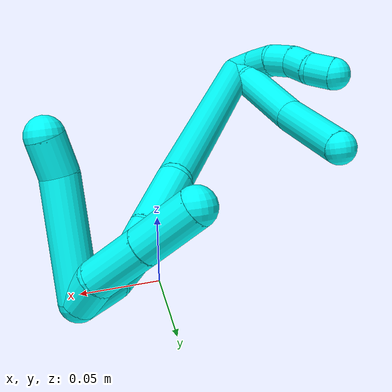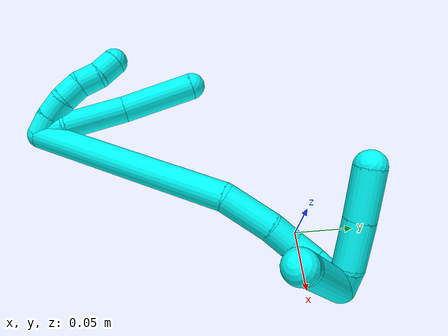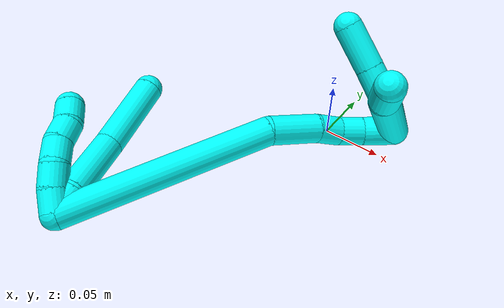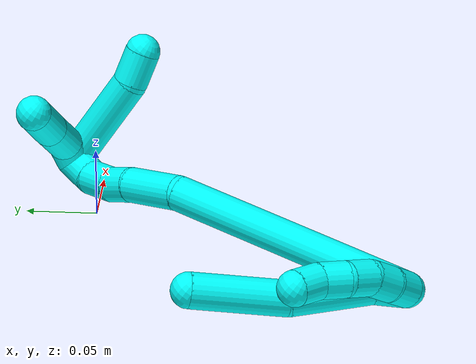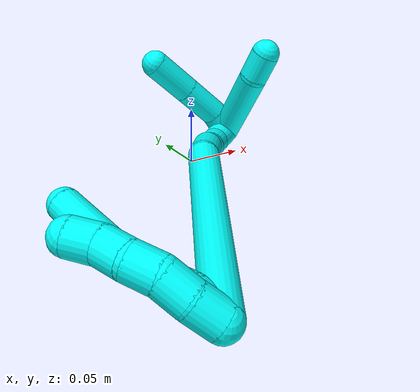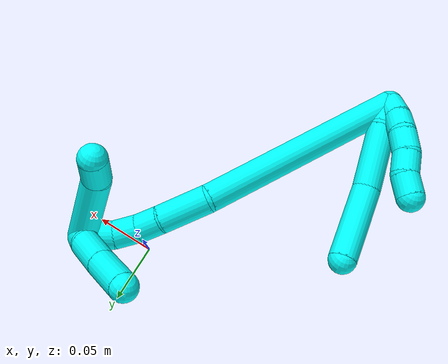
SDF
<sdf version="1.7">
 <world name="default">
  <model name="photoneo_s_sensor">
   <static>1</static>
   <pose>0 0 2 1.57079 1.57079 3.14159</pose>
   <link name="link">
    <inertial><mass>0.1</mass></inertial>
    <sensor name="sensor" type="depth">
     <update_rate>30</update_rate>
     <camera>
      <horizontal_fov>1.22</horizontal_fov>
      <image><width>1920</width><height>1200</height><format>B8G8R8</format></image>
      <clip><near>0.1</near><far>4</far></clip>
      <depth_camera><output>points</output></depth_camera>
     </camera>
     <plugin name="camera_plugin" filename="libgazebo_ros_depth_camera.so">
      <baseline>0.2</baseline>
      <alwaysOn>1</alwaysOn>
      <updateRate>0.0</updateRate>
      <cameraName>camera_ir</cameraName>
      <imageTopicName>/camera/color/image_raw</imageTopicName>
      <cameraInfoTopicName>/camera/color/camera_info</cameraInfoTopicName>
      <depthImageTopicName>/camera/depth/image_raw</depthImageTopicName>
      <depthImageCameraInfoTopicName>/camera/depth/camera_info</depthImageCameraInfoTopicName>
      <pointCloudTopicName>/camera/depth/points</pointCloudTopicName>
      <frameName>fr_optical</frameName>
      <pointCloudCutoff>0.1</pointCloudCutoff>
      <pointCloudCutoffMax>2.0</pointCloudCutoffMax>
      <distortionK1>0</distortionK1>
      <distortionK2>0</distortionK2>
      <distortionK3>0</distortionK3>
      <distortionT1>0</distortionT1>
      <distortionT2>0</distortionT2>
      <CxPrime>0</CxPrime>
      <Cx>0</Cx>
      <Cy>0</Cy>
      <focalLength>0</focalLength>
      <hackBaseline>0</hackBaseline>
     </plugin>
    </sensor>
   </link>
  </model>
  <model name="bin">
   <static>1</static>
   <link name="bottom">
    <collision name="collision-bottom">
     <pose>0 0 -0.01 0 -0 0</pose>
     <geometry><box><size>0.8 0.6 0.02</size></box></geometry>
     <surface>
      <friction><ode><mu>100</mu><mu2>100</mu2></ode></friction>
      <contact><collide_bitmask>65535</collide_bitmask></contact>
     </surface>
    </collision>
   </link>
   <link name="west_wall">
    <collision name="collision-west_wall">
     <pose>-0.41 0 0.1 0 -0 0</pose>
     <geometry><box><size>0.02 0.6 0.2</size></box></geometry>
     <surface>
      <friction><ode><mu>100</mu><mu2>100</mu2></ode></friction>
      <contact><collide_bitmask>65535</collide_bitmask></contact>
     </surface>
    </collision>
   </link>
   <link name="east_wall">
    <collision name="collision-east_wall">
     <pose>0.41 0 0.1 0 -0 0</pose>
     <geometry><box><size>0.02 0.6 0.2</size></box></geometry>
     <surface>
      <friction><ode><mu>100</mu><mu2>100</mu2></ode></friction>
      <contact><collide_bitmask>65535</collide_bitmask></contact>
     </surface>
    </collision>
   </link>
   <link name="south_wall">
    <collision name="collision-south_wall">
     <pose>0 -0.31 0.1 0 -0 0</pose>
     <geometry><box><size>0.8 0.02 0.2</size></box></geometry>
     <surface>
      <friction><ode><mu>100</mu><mu2>100</mu2></ode></friction>
      <contact><collide_bitmask>65535</collide_bitmask></contact>
     </surface>
    </collision>
   </link>
   <link name="north_wall">
    <collision name="collision-north_wall">
     <pose>0 0.31 0.1 0 -0 0</pose>
     <geometry><box><size>0.8 0.02 0.2</size></box></geometry>
     <surface>
      <friction><ode><mu>100</mu><mu2>100</mu2></ode></friction>
      <contact><collide_bitmask>65535</collide_bitmask></contact>
     </surface>
    </collision>
   </link>
  </model>
  <model name="3">
   <static>0</static>
   <link name="3">
    <collision name="collision-cylinder-e_1_2_8">
     <pose>0.004669 0.009964 -0.004305 -1.97862 0.40623 -0.607293</pose>
     <geometry><cylinder><radius>0.0125</radius><length>0.023632</length></cylinder></geometry>
     <surface>
      <friction><ode><mu>1.16</mu><mu2>1.16</mu2><slip1>0</slip1><slip2>0</slip2></ode></friction>
      <contact><ode><kp>1e+06</kp><kd>1</kd><max_vel>0</max_vel><min_depth>0.001</min_depth></ode></contact>
     </surface>
    </collision>
    <visual name="visual-cylinder-e_1_2_8">
     <pose>0.004669 0.009964 -0.004305 -1.97862 0.40623 -0.607293</pose>
     <geometry><cylinder><radius>0.0125</radius><length>0.023632</length></cylinder></geometry>
     <material><ambient>0.003922 1 0.996078 1</ambient></material>
    </visual>
    <collision name="collision-cylinder-e_2_8_9">
     <pose>0.016513 0.043103 -0.024693 -2.17748 0.249075 -0.469681</pose>
     <geometry><cylinder><radius>0.0125</radius><length>0.058214</length></cylinder></geometry>
     <surface>
      <friction><ode><mu>1.16</mu><mu2>1.16</mu2><slip1>0</slip1><slip2>0</slip2></ode></friction>
      <contact><ode><kp>1e+06</kp><kd>1</kd><max_vel>0</max_vel><min_depth>0.001</min_depth></ode></contact>
     </surface>
    </collision>
    <visual name="visual-cylinder-e_2_8_9">
     <pose>0.016513 0.043103 -0.024693 -2.17748 0.249075 -0.469681</pose>
     <geometry><cylinder><radius>0.0125</radius><length>0.058214</length></cylinder></geometry>
     <material><ambient>0.003922 1 0.996078 1</ambient></material>
    </visual>
    <collision name="collision-cylinder-e_3_9_6">
     <pose>0.036977 0.0948 -0.053859 -2.00088 0.400592 -0.613025</pose>
     <geometry><cylinder><radius>0.0125</radius><length>0.068154</length></cylinder></geometry>
     <surface>
      <friction><ode><mu>1.16</mu><mu2>1.16</mu2><slip1>0</slip1><slip2>0</slip2></ode></friction>
      <contact><ode><kp>1e+06</kp><kd>1</kd><max_vel>0</max_vel><min_depth>0.001</min_depth></ode></contact>
     </surface>
    </collision>
    <visual name="visual-cylinder-e_3_9_6">
     <pose>0.036977 0.0948 -0.053859 -2.00088 0.400592 -0.613025</pose>
     <geometry><cylinder><radius>0.0125</radius><length>0.068154</length></cylinder></geometry>
     <material><ambient>0.003922 1 0.996078 1</ambient></material>
    </visual>
    <collision name="collision-cylinder-e_1_2_10">
     <pose>-0.000339 0.009846 0.001714 -1.39845 -0.033866 0.028481</pose>
     <geometry><cylinder><radius>0.0125</radius><length>0.02</length></cylinder></geometry>
     <surface>
      <friction><ode><mu>1.16</mu><mu2>1.16</mu2><slip1>0</slip1><slip2>0</slip2></ode></friction>
      <contact><ode><kp>1e+06</kp><kd>1</kd><max_vel>0</max_vel><min_depth>0.001</min_depth></ode></contact>
     </surface>
    </collision>
    <visual name="visual-cylinder-e_1_2_10">
     <pose>-0.000339 0.009846 0.001714 -1.39845 -0.033866 0.028481</pose>
     <geometry><cylinder><radius>0.0125</radius><length>0.02</length></cylinder></geometry>
     <material><ambient>0.003922 1 0.996078 1</ambient></material>
    </visual>
    <collision name="collision-cylinder-e_2_10_11">
     <pose>0.000454 0.029599 0.004184 -1.49466 0.11339 -0.105085</pose>
     <geometry><cylinder><radius>0.0125</radius><length>0.02</length></cylinder></geometry>
     <surface>
      <friction><ode><mu>1.16</mu><mu2>1.16</mu2><slip1>0</slip1><slip2>0</slip2></ode></friction>
      <contact><ode><kp>1e+06</kp><kd>1</kd><max_vel>0</max_vel><min_depth>0.001</min_depth></ode></contact>
     </surface>
    </collision>
    <visual name="visual-cylinder-e_2_10_11">
     <pose>0.000454 0.029599 0.004184 -1.49466 0.11339 -0.105085</pose>
     <geometry><cylinder><radius>0.0125</radius><length>0.02</length></cylinder></geometry>
     <material><ambient>0.003922 1 0.996078 1</ambient></material>
    </visual>
    <collision name="collision-cylinder-e_3_11_12">
     <pose>0.001607 0.049305 0.002943 -1.77178 0.002145 -0.002626</pose>
     <geometry><cylinder><radius>0.0125</radius><length>0.02</length></cylinder></geometry>
     <surface>
      <friction><ode><mu>1.16</mu><mu2>1.16</mu2><slip1>0</slip1><slip2>0</slip2></ode></friction>
      <contact><ode><kp>1e+06</kp><kd>1</kd><max_vel>0</max_vel><min_depth>0.001</min_depth></ode></contact>
     </surface>
    </collision>
    <visual name="visual-cylinder-e_3_11_12">
     <pose>0.001607 0.049305 0.002943 -1.77178 0.002145 -0.002626</pose>
     <geometry><cylinder><radius>0.0125</radius><length>0.02</length></cylinder></geometry>
     <material><ambient>0.003922 1 0.996078 1</ambient></material>
    </visual>
    <collision name="collision-cylinder-e_4_12_13">
     <pose>0.003555 0.068083 -0.00301 -1.98585 0.193887 -0.296065</pose>
     <geometry><cylinder><radius>0.0125</radius><length>0.02</length></cylinder></geometry>
     <surface>
      <friction><ode><mu>1.16</mu><mu2>1.16</mu2><slip1>0</slip1><slip2>0</slip2></ode></friction>
      <contact><ode><kp>1e+06</kp><kd>1</kd><max_vel>0</max_vel><min_depth>0.001</min_depth></ode></contact>
     </surface>
    </collision>
    <visual name="visual-cylinder-e_4_12_13">
     <pose>0.003555 0.068083 -0.00301 -1.98585 0.193887 -0.296065</pose>
     <geometry><cylinder><radius>0.0125</radius><length>0.02</length></cylinder></geometry>
     <material><ambient>0.003922 1 0.996078 1</ambient></material>
    </visual>
    <collision name="collision-cylinder-e_5_13_5">
     <pose>0.00415 0.086443 -0.010167 -1.89957 -0.133609 0.186488</pose>
     <geometry><cylinder><radius>0.0125</radius><length>0.02</length></cylinder></geometry>
     <surface>
      <friction><ode><mu>1.16</mu><mu2>1.16</mu2><slip1>0</slip1><slip2>0</slip2></ode></friction>
      <contact><ode><kp>1e+06</kp><kd>1</kd><max_vel>0</max_vel><min_depth>0.001</min_depth></ode></contact>
     </surface>
    </collision>
    <visual name="visual-cylinder-e_5_13_5">
     <pose>0.00415 0.086443 -0.010167 -1.89957 -0.133609 0.186488</pose>
     <geometry><cylinder><radius>0.0125</radius><length>0.02</length></cylinder></geometry>
     <material><ambient>0.003922 1 0.996078 1</ambient></material>
    </visual>
    <collision name="collision-cylinder-e_1_2_14">
     <pose>0.078863 0.031118 -0.036029 -2.42921 1.02769 -1.97596</pose>
     <geometry><cylinder><radius>0.0125</radius><length>0.184236</length></cylinder></geometry>
     <surface>
      <friction><ode><mu>1.16</mu><mu2>1.16</mu2><slip1>0</slip1><slip2>0</slip2></ode></friction>
      <contact><ode><kp>1e+06</kp><kd>1</kd><max_vel>0</max_vel><min_depth>0.001</min_depth></ode></contact>
     </surface>
    </collision>
    <visual name="visual-cylinder-e_1_2_14">
     <pose>0.078863 0.031118 -0.036029 -2.42921 1.02769 -1.97596</pose>
     <geometry><cylinder><radius>0.0125</radius><length>0.184236</length></cylinder></geometry>
     <material><ambient>0.003922 1 0.996078 1</ambient></material>
    </visual>
    <collision name="collision-cylinder-e_2_14_15">
     <pose>0.175337 0.064274 -0.085412 -2.99012 0.916494 -2.83631</pose>
     <geometry><cylinder><radius>0.0125</radius><length>0.044392</length></cylinder></geometry>
     <surface>
      <friction><ode><mu>1.16</mu><mu2>1.16</mu2><slip1>0</slip1><slip2>0</slip2></ode></friction>
      <contact><ode><kp>1e+06</kp><kd>1</kd><max_vel>0</max_vel><min_depth>0.001</min_depth></ode></contact>
     </surface>
    </collision>
    <visual name="visual-cylinder-e_2_14_15">
     <pose>0.175337 0.064274 -0.085412 -2.99012 0.916494 -2.83631</pose>
     <geometry><cylinder><radius>0.0125</radius><length>0.044392</length></cylinder></geometry>
     <material><ambient>0.003922 1 0.996078 1</ambient></material>
    </visual>
    <collision name="collision-cylinder-e_3_15_16">
     <pose>0.200731 0.065964 -0.106146 3.0944 0.81125 3.0318</pose>
     <geometry><cylinder><radius>0.0125</radius><length>0.02146</length></cylinder></geometry>
     <surface>
      <friction><ode><mu>1.16</mu><mu2>1.16</mu2><slip1>0</slip1><slip2>0</slip2></ode></friction>
      <contact><ode><kp>1e+06</kp><kd>1</kd><max_vel>0</max_vel><min_depth>0.001</min_depth></ode></contact>
     </surface>
    </collision>
    <visual name="visual-cylinder-e_3_15_16">
     <pose>0.200731 0.065964 -0.106146 3.0944 0.81125 3.0318</pose>
     <geometry><cylinder><radius>0.0125</radius><length>0.02146</length></cylinder></geometry>
     <material><ambient>0.003922 1 0.996078 1</ambient></material>
    </visual>
    <collision name="collision-cylinder-e_4_16_17">
     <pose>0.218112 0.065506 -0.119228 3.12248 1.03486 3.10801</pose>
     <geometry><cylinder><radius>0.0125</radius><length>0.022333</length></cylinder></geometry>
     <surface>
      <friction><ode><mu>1.16</mu><mu2>1.16</mu2><slip1>0</slip1><slip2>0</slip2></ode></friction>
      <contact><ode><kp>1e+06</kp><kd>1</kd><max_vel>0</max_vel><min_depth>0.001</min_depth></ode></contact>
     </surface>
    </collision>
    <visual name="visual-cylinder-e_4_16_17">
     <pose>0.218112 0.065506 -0.119228 3.12248 1.03486 3.10801</pose>
     <geometry><cylinder><radius>0.0125</radius><length>0.022333</length></cylinder></geometry>
     <material><ambient>0.003922 1 0.996078 1</ambient></material>
    </visual>
    <collision name="collision-cylinder-e_5_17_1">
     <pose>0.240977 0.064236 -0.128515 2.82848 1.29391 2.72961</pose>
     <geometry><cylinder><radius>0.0125</radius><length>0.027578</length></cylinder></geometry>
     <surface>
      <friction><ode><mu>1.16</mu><mu2>1.16</mu2><slip1>0</slip1><slip2>0</slip2></ode></friction>
      <contact><ode><kp>1e+06</kp><kd>1</kd><max_vel>0</max_vel><min_depth>0.001</min_depth></ode></contact>
     </surface>
    </collision>
    <visual name="visual-cylinder-e_5_17_1">
     <pose>0.240977 0.064236 -0.128515 2.82848 1.29391 2.72961</pose>
     <geometry><cylinder><radius>0.0125</radius><length>0.027578</length></cylinder></geometry>
     <material><ambient>0.003922 1 0.996078 1</ambient></material>
    </visual>
    <collision name="collision-cylinder-e_1_1_18">
     <pose>0.254628 0.062501 -0.094409 0.015218 0.010252 7.8e-05</pose>
     <geometry><cylinder><radius>0.0125</radius><length>0.075398</length></cylinder></geometry>
     <surface>
      <friction><ode><mu>1.16</mu><mu2>1.16</mu2><slip1>0</slip1><slip2>0</slip2></ode></friction>
      <contact><ode><kp>1e+06</kp><kd>1</kd><max_vel>0</max_vel><min_depth>0.001</min_depth></ode></contact>
     </surface>
    </collision>
    <visual name="visual-cylinder-e_1_1_18">
     <pose>0.254628 0.062501 -0.094409 0.015218 0.010252 7.8e-05</pose>
     <geometry><cylinder><radius>0.0125</radius><length>0.075398</length></cylinder></geometry>
     <material><ambient>0.003922 1 0.996078 1</ambient></material>
    </visual>
    <collision name="collision-cylinder-e_2_18_4">
     <pose>0.258757 0.0621 -0.045 -0.014725 0.309148 -0.002294</pose>
     <geometry><cylinder><radius>0.0125</radius><length>0.024602</length></cylinder></geometry>
     <surface>
      <friction><ode><mu>1.16</mu><mu2>1.16</mu2><slip1>0</slip1><slip2>0</slip2></ode></friction>
      <contact><ode><kp>1e+06</kp><kd>1</kd><max_vel>0</max_vel><min_depth>0.001</min_depth></ode></contact>
     </surface>
    </collision>
    <visual name="visual-cylinder-e_2_18_4">
     <pose>0.258757 0.0621 -0.045 -0.014725 0.309148 -0.002294</pose>
     <geometry><cylinder><radius>0.0125</radius><length>0.024602</length></cylinder></geometry>
     <material><ambient>0.003922 1 0.996078 1</ambient></material>
    </visual>
    <collision name="collision-cylinder-e_1_1_19">
     <pose>0.254204 0.071776 -0.125511 -0.922567 -0.00337 0.001675</pose>
     <geometry><cylinder><radius>0.0125</radius><length>0.02183</length></cylinder></geometry>
     <surface>
      <friction><ode><mu>1.16</mu><mu2>1.16</mu2><slip1>0</slip1><slip2>0</slip2></ode></friction>
      <contact><ode><kp>1e+06</kp><kd>1</kd><max_vel>0</max_vel><min_depth>0.001</min_depth></ode></contact>
     </surface>
    </collision>
    <visual name="visual-cylinder-e_1_1_19">
     <pose>0.254204 0.071776 -0.125511 -0.922567 -0.00337 0.001675</pose>
     <geometry><cylinder><radius>0.0125</radius><length>0.02183</length></cylinder></geometry>
     <material><ambient>0.003922 1 0.996078 1</ambient></material>
    </visual>
    <collision name="collision-cylinder-e_2_19_20">
     <pose>0.249728 0.096571 -0.110283 -1.07821 -0.238397 0.143047</pose>
     <geometry><cylinder><radius>0.0125</radius><length>0.037596</length></cylinder></geometry>
     <surface>
      <friction><ode><mu>1.16</mu><mu2>1.16</mu2><slip1>0</slip1><slip2>0</slip2></ode></friction>
      <contact><ode><kp>1e+06</kp><kd>1</kd><max_vel>0</max_vel><min_depth>0.001</min_depth></ode></contact>
     </surface>
    </collision>
    <visual name="visual-cylinder-e_2_19_20">
     <pose>0.249728 0.096571 -0.110283 -1.07821 -0.238397 0.143047</pose>
     <geometry><cylinder><radius>0.0125</radius><length>0.037596</length></cylinder></geometry>
     <material><ambient>0.003922 1 0.996078 1</ambient></material>
    </visual>
    <collision name="collision-cylinder-e_3_20_3">
     <pose>0.240012 0.129724 -0.092015 -1.0569 -0.263166 0.154232</pose>
     <geometry><cylinder><radius>0.0125</radius><length>0.040574</length></cylinder></geometry>
     <surface>
      <friction><ode><mu>1.16</mu><mu2>1.16</mu2><slip1>0</slip1><slip2>0</slip2></ode></friction>
      <contact><ode><kp>1e+06</kp><kd>1</kd><max_vel>0</max_vel><min_depth>0.001</min_depth></ode></contact>
     </surface>
    </collision>
    <visual name="visual-cylinder-e_3_20_3">
     <pose>0.240012 0.129724 -0.092015 -1.0569 -0.263166 0.154232</pose>
     <geometry><cylinder><radius>0.0125</radius><length>0.040574</length></cylinder></geometry>
     <material><ambient>0.003922 1 0.996078 1</ambient></material>
    </visual>
    <collision name="collision-sphere-3">
     <pose>0.234735 0.146783 -0.082386 0 -0 0</pose>
     <geometry><sphere><radius>0.0125</radius></sphere></geometry>
     <surface>
      <friction><ode><mu>1.16</mu><mu2>1.16</mu2><slip1>0</slip1><slip2>0</slip2></ode></friction>
      <contact><ode><kp>1e+06</kp><kd>1</kd><max_vel>0</max_vel><min_depth>0.001</min_depth></ode></contact>
     </surface>
    </collision>
    <visual name="visual-sphere-3">
     <pose>0.234735 0.146783 -0.082386 0 -0 0</pose>
     <geometry><sphere><radius>0.0125</radius></sphere></geometry>
     <material><ambient>0.003922 1 0.996078 1</ambient></material>
    </visual>
    <collision name="collision-sphere-20">
     <pose>0.245289 0.112666 -0.101645 0 -0 0</pose>
     <geometry><sphere><radius>0.0125</radius></sphere></geometry>
     <surface>
      <friction><ode><mu>1.16</mu><mu2>1.16</mu2><slip1>0</slip1><slip2>0</slip2></ode></friction>
      <contact><ode><kp>1e+06</kp><kd>1</kd><max_vel>0</max_vel><min_depth>0.001</min_depth></ode></contact>
     </surface>
    </collision>
    <visual name="visual-sphere-20">
     <pose>0.245289 0.112666 -0.101645 0 -0 0</pose>
     <geometry><sphere><radius>0.0125</radius></sphere></geometry>
     <material><ambient>0.003922 1 0.996078 1</ambient></material>
    </visual>
    <collision name="collision-sphere-19">
     <pose>0.254168 0.080477 -0.118921 0 -0 0</pose>
     <geometry><sphere><radius>0.0125</radius></sphere></geometry>
     <surface>
      <friction><ode><mu>1.16</mu><mu2>1.16</mu2><slip1>0</slip1><slip2>0</slip2></ode></friction>
      <contact><ode><kp>1e+06</kp><kd>1</kd><max_vel>0</max_vel><min_depth>0.001</min_depth></ode></contact>
     </surface>
    </collision>
    <visual name="visual-sphere-19">
     <pose>0.254168 0.080477 -0.118921 0 -0 0</pose>
     <geometry><sphere><radius>0.0125</radius></sphere></geometry>
     <material><ambient>0.003922 1 0.996078 1</ambient></material>
    </visual>
    <collision name="collision-sphere-11">
     <pose>0.001586 0.039506 0.004939 0 -0 0</pose>
     <geometry><sphere><radius>0.0125</radius></sphere></geometry>
     <surface>
      <friction><ode><mu>1.16</mu><mu2>1.16</mu2><slip1>0</slip1><slip2>0</slip2></ode></friction>
      <contact><ode><kp>1e+06</kp><kd>1</kd><max_vel>0</max_vel><min_depth>0.001</min_depth></ode></contact>
     </surface>
    </collision>
    <visual name="visual-sphere-11">
     <pose>0.001586 0.039506 0.004939 0 -0 0</pose>
     <geometry><sphere><radius>0.0125</radius></sphere></geometry>
     <material><ambient>0.003922 1 0.996078 1</ambient></material>
    </visual>
    <collision name="collision-sphere-10">
     <pose>-0.000677 0.019692 0.003428 0 -0 0</pose>
     <geometry><sphere><radius>0.0125</radius></sphere></geometry>
     <surface>
      <friction><ode><mu>1.16</mu><mu2>1.16</mu2><slip1>0</slip1><slip2>0</slip2></ode></friction>
      <contact><ode><kp>1e+06</kp><kd>1</kd><max_vel>0</max_vel><min_depth>0.001</min_depth></ode></contact>
     </surface>
    </collision>
    <visual name="visual-sphere-10">
     <pose>-0.000677 0.019692 0.003428 0 -0 0</pose>
     <geometry><sphere><radius>0.0125</radius></sphere></geometry>
     <material><ambient>0.003922 1 0.996078 1</ambient></material>
    </visual>
    <collision name="collision-sphere-6">
     <pose>0.050266 0.123321 -0.066943 0 -0 0</pose>
     <geometry><sphere><radius>0.0125</radius></sphere></geometry>
     <surface>
      <friction><ode><mu>1.16</mu><mu2>1.16</mu2><slip1>0</slip1><slip2>0</slip2></ode></friction>
      <contact><ode><kp>1e+06</kp><kd>1</kd><max_vel>0</max_vel><min_depth>0.001</min_depth></ode></contact>
     </surface>
    </collision>
    <visual name="visual-sphere-6">
     <pose>0.050266 0.123321 -0.066943 0 -0 0</pose>
     <geometry><sphere><radius>0.0125</radius></sphere></geometry>
     <material><ambient>0.003922 1 0.996078 1</ambient></material>
    </visual>
    <collision name="collision-sphere-9">
     <pose>0.023688 0.066278 -0.040776 0 -0 0</pose>
     <geometry><sphere><radius>0.0125</radius></sphere></geometry>
     <surface>
      <friction><ode><mu>1.16</mu><mu2>1.16</mu2><slip1>0</slip1><slip2>0</slip2></ode></friction>
      <contact><ode><kp>1e+06</kp><kd>1</kd><max_vel>0</max_vel><min_depth>0.001</min_depth></ode></contact>
     </surface>
    </collision>
    <visual name="visual-sphere-9">
     <pose>0.023688 0.066278 -0.040776 0 -0 0</pose>
     <geometry><sphere><radius>0.0125</radius></sphere></geometry>
     <material><ambient>0.003922 1 0.996078 1</ambient></material>
    </visual>
    <collision name="collision-sphere-2">
     <geometry><sphere><radius>0.0125</radius></sphere></geometry>
     <surface>
      <friction><ode><mu>1.16</mu><mu2>1.16</mu2><slip1>0</slip1><slip2>0</slip2></ode></friction>
      <contact><ode><kp>1e+06</kp><kd>1</kd><max_vel>0</max_vel><min_depth>0.001</min_depth></ode></contact>
     </surface>
    </collision>
    <visual name="visual-sphere-2">
     <geometry><sphere><radius>0.0125</radius></sphere></geometry>
     <material><ambient>0.003922 1 0.996078 1</ambient></material>
    </visual>
    <collision name="collision-sphere-8">
     <pose>0.009338 0.019928 -0.00861 0 -0 0</pose>
     <geometry><sphere><radius>0.0125</radius></sphere></geometry>
     <surface>
      <friction><ode><mu>1.16</mu><mu2>1.16</mu2><slip1>0</slip1><slip2>0</slip2></ode></friction>
      <contact><ode><kp>1e+06</kp><kd>1</kd><max_vel>0</max_vel><min_depth>0.001</min_depth></ode></contact>
     </surface>
    </collision>
    <visual name="visual-sphere-8">
     <pose>0.009338 0.019928 -0.00861 0 -0 0</pose>
     <geometry><sphere><radius>0.0125</radius></sphere></geometry>
     <material><ambient>0.003922 1 0.996078 1</ambient></material>
    </visual>
    <collision name="collision-sphere-12">
     <pose>0.001629 0.059104 0.000947 0 -0 0</pose>
     <geometry><sphere><radius>0.0125</radius></sphere></geometry>
     <surface>
      <friction><ode><mu>1.16</mu><mu2>1.16</mu2><slip1>0</slip1><slip2>0</slip2></ode></friction>
      <contact><ode><kp>1e+06</kp><kd>1</kd><max_vel>0</max_vel><min_depth>0.001</min_depth></ode></contact>
     </surface>
    </collision>
    <visual name="visual-sphere-12">
     <pose>0.001629 0.059104 0.000947 0 -0 0</pose>
     <geometry><sphere><radius>0.0125</radius></sphere></geometry>
     <material><ambient>0.003922 1 0.996078 1</ambient></material>
    </visual>
    <collision name="collision-sphere-13">
     <pose>0.005482 0.077063 -0.006967 0 -0 0</pose>
     <geometry><sphere><radius>0.0125</radius></sphere></geometry>
     <surface>
      <friction><ode><mu>1.16</mu><mu2>1.16</mu2><slip1>0</slip1><slip2>0</slip2></ode></friction>
      <contact><ode><kp>1e+06</kp><kd>1</kd><max_vel>0</max_vel><min_depth>0.001</min_depth></ode></contact>
     </surface>
    </collision>
    <visual name="visual-sphere-13">
     <pose>0.005482 0.077063 -0.006967 0 -0 0</pose>
     <geometry><sphere><radius>0.0125</radius></sphere></geometry>
     <material><ambient>0.003922 1 0.996078 1</ambient></material>
    </visual>
    <collision name="collision-sphere-5">
     <pose>0.002818 0.095823 -0.013367 0 -0 0</pose>
     <geometry><sphere><radius>0.0125</radius></sphere></geometry>
     <surface>
      <friction><ode><mu>1.16</mu><mu2>1.16</mu2><slip1>0</slip1><slip2>0</slip2></ode></friction>
      <contact><ode><kp>1e+06</kp><kd>1</kd><max_vel>0</max_vel><min_depth>0.001</min_depth></ode></contact>
     </surface>
    </collision>
    <visual name="visual-sphere-5">
     <pose>0.002818 0.095823 -0.013367 0 -0 0</pose>
     <geometry><sphere><radius>0.0125</radius></sphere></geometry>
     <material><ambient>0.003922 1 0.996078 1</ambient></material>
    </visual>
    <collision name="collision-sphere-14">
     <pose>0.157725 0.062235 -0.072058 0 -0 0</pose>
     <geometry><sphere><radius>0.0125</radius></sphere></geometry>
     <surface>
      <friction><ode><mu>1.16</mu><mu2>1.16</mu2><slip1>0</slip1><slip2>0</slip2></ode></friction>
      <contact><ode><kp>1e+06</kp><kd>1</kd><max_vel>0</max_vel><min_depth>0.001</min_depth></ode></contact>
     </surface>
    </collision>
    <visual name="visual-sphere-14">
     <pose>0.157725 0.062235 -0.072058 0 -0 0</pose>
     <geometry><sphere><radius>0.0125</radius></sphere></geometry>
     <material><ambient>0.003922 1 0.996078 1</ambient></material>
    </visual>
    <collision name="collision-sphere-15">
     <pose>0.19295 0.066312 -0.098766 0 -0 0</pose>
     <geometry><sphere><radius>0.0125</radius></sphere></geometry>
     <surface>
      <friction><ode><mu>1.16</mu><mu2>1.16</mu2><slip1>0</slip1><slip2>0</slip2></ode></friction>
      <contact><ode><kp>1e+06</kp><kd>1</kd><max_vel>0</max_vel><min_depth>0.001</min_depth></ode></contact>
     </surface>
    </collision>
    <visual name="visual-sphere-15">
     <pose>0.19295 0.066312 -0.098766 0 -0 0</pose>
     <geometry><sphere><radius>0.0125</radius></sphere></geometry>
     <material><ambient>0.003922 1 0.996078 1</ambient></material>
    </visual>
    <collision name="collision-sphere-16">
     <pose>0.208512 0.065615 -0.113527 0 -0 0</pose>
     <geometry><sphere><radius>0.0125</radius></sphere></geometry>
     <surface>
      <friction><ode><mu>1.16</mu><mu2>1.16</mu2><slip1>0</slip1><slip2>0</slip2></ode></friction>
      <contact><ode><kp>1e+06</kp><kd>1</kd><max_vel>0</max_vel><min_depth>0.001</min_depth></ode></contact>
     </surface>
    </collision>
    <visual name="visual-sphere-16">
     <pose>0.208512 0.065615 -0.113527 0 -0 0</pose>
     <geometry><sphere><radius>0.0125</radius></sphere></geometry>
     <material><ambient>0.003922 1 0.996078 1</ambient></material>
    </visual>
    <collision name="collision-sphere-17">
     <pose>0.227713 0.065397 -0.124929 0 -0 0</pose>
     <geometry><sphere><radius>0.0125</radius></sphere></geometry>
     <surface>
      <friction><ode><mu>1.16</mu><mu2>1.16</mu2><slip1>0</slip1><slip2>0</slip2></ode></friction>
      <contact><ode><kp>1e+06</kp><kd>1</kd><max_vel>0</max_vel><min_depth>0.001</min_depth></ode></contact>
     </surface>
    </collision>
    <visual name="visual-sphere-17">
     <pose>0.227713 0.065397 -0.124929 0 -0 0</pose>
     <geometry><sphere><radius>0.0125</radius></sphere></geometry>
     <material><ambient>0.003922 1 0.996078 1</ambient></material>
    </visual>
    <collision name="collision-sphere-1">
     <pose>0.254241 0.063075 -0.132101 0 -0 0</pose>
     <geometry><sphere><radius>0.0125</radius></sphere></geometry>
     <surface>
      <friction><ode><mu>1.16</mu><mu2>1.16</mu2><slip1>0</slip1><slip2>0</slip2></ode></friction>
      <contact><ode><kp>1e+06</kp><kd>1</kd><max_vel>0</max_vel><min_depth>0.001</min_depth></ode></contact>
     </surface>
    </collision>
    <visual name="visual-sphere-1">
     <pose>0.254241 0.063075 -0.132101 0 -0 0</pose>
     <geometry><sphere><radius>0.0125</radius></sphere></geometry>
     <material><ambient>0.003922 1 0.996078 1</ambient></material>
    </visual>
    <collision name="collision-sphere-18">
     <pose>0.255014 0.061928 -0.056716 0 -0 0</pose>
     <geometry><sphere><radius>0.0125</radius></sphere></geometry>
     <surface>
      <friction><ode><mu>1.16</mu><mu2>1.16</mu2><slip1>0</slip1><slip2>0</slip2></ode></friction>
      <contact><ode><kp>1e+06</kp><kd>1</kd><max_vel>0</max_vel><min_depth>0.001</min_depth></ode></contact>
     </surface>
    </collision>
    <visual name="visual-sphere-18">
     <pose>0.255014 0.061928 -0.056716 0 -0 0</pose>
     <geometry><sphere><radius>0.0125</radius></sphere></geometry>
     <material><ambient>0.003922 1 0.996078 1</ambient></material>
    </visual>
    <collision name="collision-sphere-4">
     <pose>0.262499 0.062273 -0.033283 0 -0 0</pose>
     <geometry><sphere><radius>0.0125</radius></sphere></geometry>
     <surface>
      <friction><ode><mu>1.16</mu><mu2>1.16</mu2><slip1>0</slip1><slip2>0</slip2></ode></friction>
      <contact><ode><kp>1e+06</kp><kd>1</kd><max_vel>0</max_vel><min_depth>0.001</min_depth></ode></contact>
     </surface>
    </collision>
    <visual name="visual-sphere-4">
     <pose>0.262499 0.062273 -0.033283 0 -0 0</pose>
     <geometry><sphere><radius>0.0125</radius></sphere></geometry>
     <material><ambient>0.003922 1 0.996078 1</ambient></material>
    </visual>
    <inertial>
     <pose>0.122878 0.058678 -0.057408 0 -0 0</pose>
     <mass>0.75</mass>
     <inertia>
      <ixx>-0.000266</ixx>
      <ixy>0</ixy>
      <ixz>0</ixz>
      <iyy>0.000233</iyy>
      <iyz>0</iyz>
      <izz>-0.000723</izz>
     </inertia>
    </inertial>
   </link>
   <pose>-0.111984 -0.220697 0.012286 0.473872 -0.343712 0.567194</pose>
  </model>
 </world>
</sdf>
